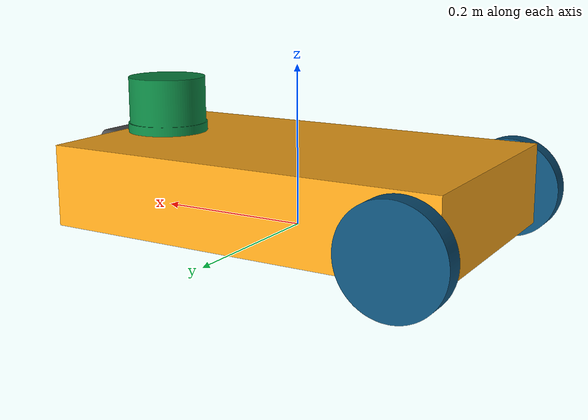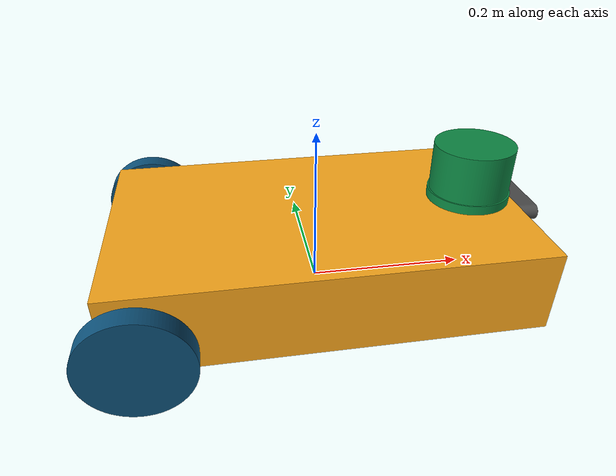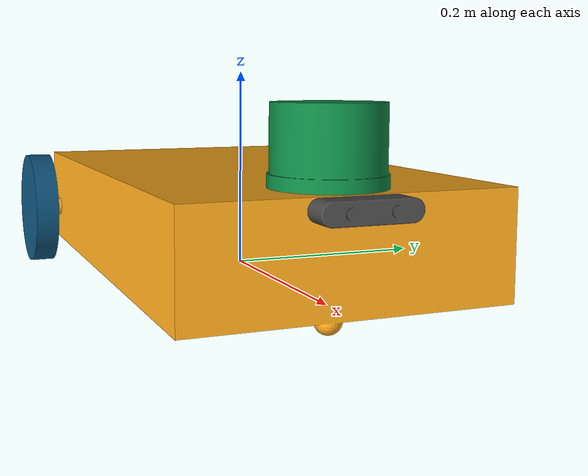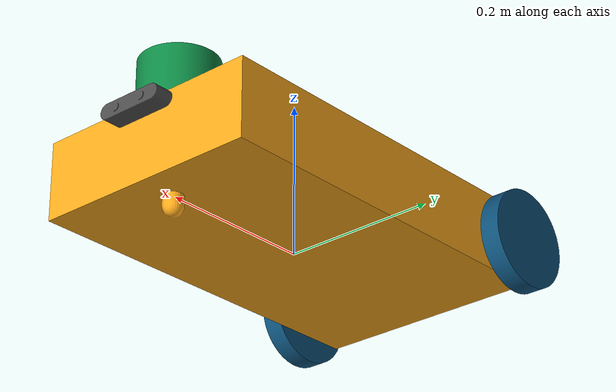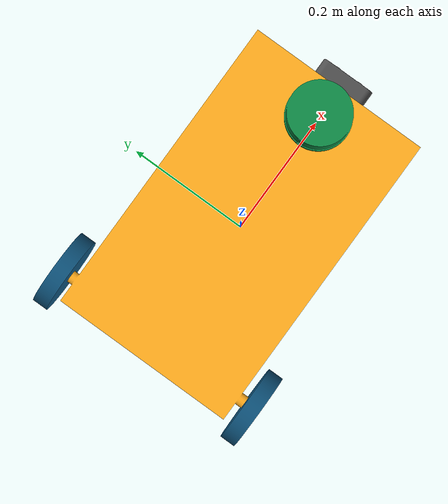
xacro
<?xml version="1.0"?>
<robot name="gripx" xmlns:xacro="http://www.ros.org/wiki/xacro">

  <xacro:macro name="material" params="name rgba">
    <material name="${name}">
      <color rgba="${rgba}" />
    </material>
  </xacro:macro>

  <xacro:material name="orange" rgba="1 0.67 0.11 1"/>
  <xacro:material name="dark_green" rgba="0.05 0.54 0.27 1"/>
  <xacro:material name="silver" rgba="0.3 0.3 0.3 1"/>
  <xacro:material name="black" rgba="0.05 0.32 0.48 1"/>

  <link name="base_footprint"></link>

  <!-- BASE_LINK -->
  <joint name="base_joint" type="fixed">
    <origin xyz="0 0 0" rpy="0 0 0" />
    <parent link="base_footprint" />
    <child link="base_link" />
  </joint>

  <link name="base_link">
    <inertial>
      <origin xyz="2.8988502670443706e-05 0.0 0.050751622031372644" rpy="0 0 0" />
      <mass value="123.6397481901343" />
      <inertia ixx="1.064219" iyy="2.768722" izz="3.619812" ixy="0.0" iyz="-0.0" ixz="0.000882" />
    </inertial>
    <visual>
      <origin xyz="0 0 0" rpy="0 0 0" />
      <geometry>
        <mesh filename="package://gripx_simulation/robot_description/meshes/base_link.stl" scale="0.001 0.001 0.001" />
      </geometry>
      <material name="orange" />
    </visual>
    <collision>
      <origin xyz="0 0 0" rpy="0 0 0" />
      <geometry>
        <mesh filename="package://gripx_simulation/robot_description/meshes/base_link.stl" scale="0.001 0.001 0.001" />
      </geometry>
    </collision>
  </link>

  <!-- RIGHT WHEEL LINK -->
  <joint name="right_wheel_joint" type="continuous">
    <origin xyz="-0.2159 -0.1651 0.0381" rpy="0 0 0" />
    <parent link="base_link" />
    <child link="right_wheel" />
    <axis xyz="-1.0 -1.0 0.0" />
  </joint>

  <link name="right_wheel">
    <inertial>
      <origin xyz="-5.551115123125783e-17 -0.012700000000000017 1.3877787807814457e-17" rpy="0 0 0" />
      <mass value="2.5258101064312513" />
      <inertia ixx="0.002682" iyy="0.005092" izz="0.002682" ixy="0.0" iyz="0.0" ixz="0.0" />
    </inertial>
    <visual>
      <origin xyz="0.2159 0.1651 -0.0381" rpy="0 0 0" />
      <geometry>
        <mesh filename="package://gripx_simulation/robot_description/meshes/right_wheel_link.stl" scale="0.001 0.001 0.001" />
      </geometry>
      <material name="black" />
    </visual>
    <collision>
      <origin xyz="0.2159 0.1651 -0.0381" rpy="0 0 0" />
      <geometry>
        <mesh filename="package://gripx_simulation/robot_description/meshes/right_wheel_link.stl" scale="0.001 0.001 0.001" />
      </geometry>
    </collision>
  </link>

  <!-- LEFT WHEEL LINK -->
  <joint name="left_wheel_joint" type="continuous">
    <origin xyz="-0.2159 0.1651 0.0381" rpy="0 0 0" />
    <parent link="base_link" />
    <child link="left_wheel" />
    <axis xyz="0.0 1.0 0.0" />
  </joint>

  <link name="left_wheel">
    <inertial>
      <origin xyz="-5.551115123125783e-17 0.012700000000000045 1.3877787807814457e-17" rpy="0 0 0" />
      <mass value="2.5258101064312513" />
      <inertia ixx="0.002682" iyy="0.005092" izz="0.002682" ixy="-0.0" iyz="-0.0" ixz="0.0" />
    </inertial>
    <visual>
      <origin xyz="0.2159 -0.1651 -0.0381" rpy="0 0 0" />
      <geometry>
        <mesh filename="package://gripx_simulation/robot_description/meshes/left_wheel_link.stl" scale="0.001 0.001 0.001" />
      </geometry>
      <material name="black" />
    </visual>
    <collision>
      <origin xyz="0.2159 -0.1651 -0.0381" rpy="0 0 0" />
      <geometry>
        <mesh filename="package://gripx_simulation/robot_description/meshes/left_wheel_link.stl" scale="0.001 0.001 0.001" />
      </geometry>
    </collision>
  </link>

  <!-- LIDAR LINK -->
  <joint name="lidar_joint" type="fixed">
    <origin xyz="0.0 0.0 0.1016" rpy="0 0 0" />
    <parent link="base_link" />
    <child link="lidar" />
  </joint>

  <link name="lidar">
    <inertial>
      <origin xyz="0.2 7.933799082645506e-18 0.03559747434885557" rpy="0 0 0" />
      <mass value="4.499441777227881" />
      <inertia ixx="0.004825" iyy="0.004825" izz="0.005706" ixy="0.0" iyz="-0.0" ixz="0.0" />
    </inertial>
    <visual>
      <origin xyz="-0.0 -0.0 -0.1016" rpy="0 0 0" />
      <geometry>
        <mesh filename="package://gripx_simulation/robot_description/meshes/lidar_link.stl" scale="0.001 0.001 0.001" />
      </geometry>
      <material name="dark_green" />
    </visual>
    <collision>
      <origin xyz="-0.0 -0.0 -0.1016" rpy="0 0 0" />
      <geometry>
        <mesh filename="package://gripx_simulation/robot_description/meshes/lidar_link.stl" scale="0.001 0.001 0.001" />
      </geometry>
    </collision>
  </link>

  <!-- CAMERA LINK -->
  <joint name="camera_joint" type="fixed">
    <origin xyz="0.254 0.0 0.0508" rpy="0 0 0" />
    <parent link="base_link" />
    <child link="camera" />
  </joint>
  <link name="camera">
    <inertial>
      <origin xyz="0.012535174738439403 -4.625670785259487e-17 0.040000000000680935" rpy="0 0 0" />
      <mass value="0.33729749975754675" />
      <inertia ixx="0.000218" iyy="2.8e-05" izz="0.000225" ixy="-0.0" iyz="-0.0" ixz="-0.0" />
    </inertial>
    <visual>
      <origin xyz="-0.254 -0.0 -0.0508" rpy="0 0 0" />
      <geometry>
        <mesh filename="package://gripx_simulation/robot_description/meshes/camera_link.stl" scale="0.001 0.001 0.001" />
      </geometry>
      <material name="silver" />
    </visual>
    <collision>
      <origin xyz="-0.254 -0.0 -0.0508" rpy="0 0 0" />
      <geometry>
        <mesh filename="package://gripx_simulation/robot_description/meshes/camera_link.stl" scale="0.001 0.001 0.001" />
      </geometry>
    </collision>
  </link>

</robot>
